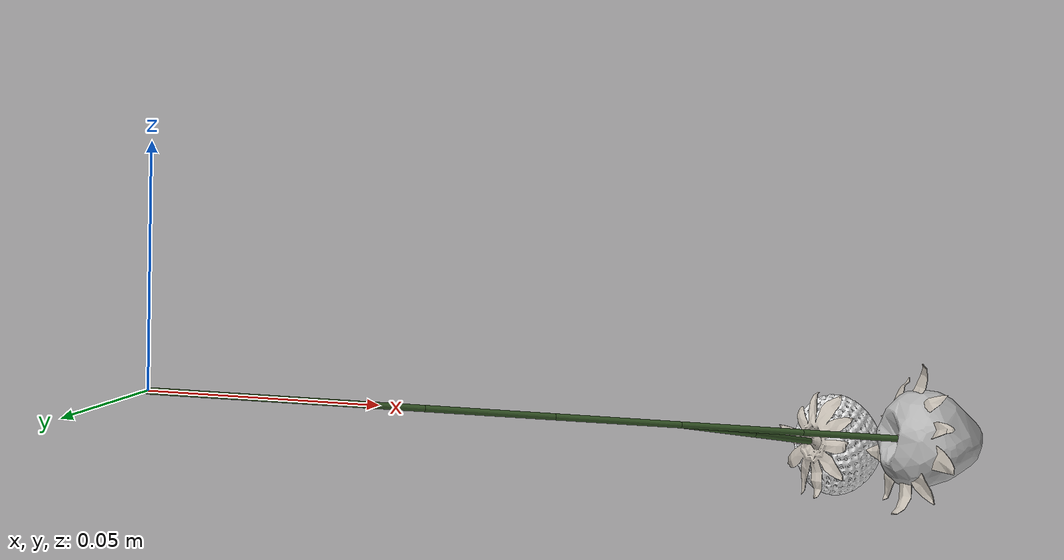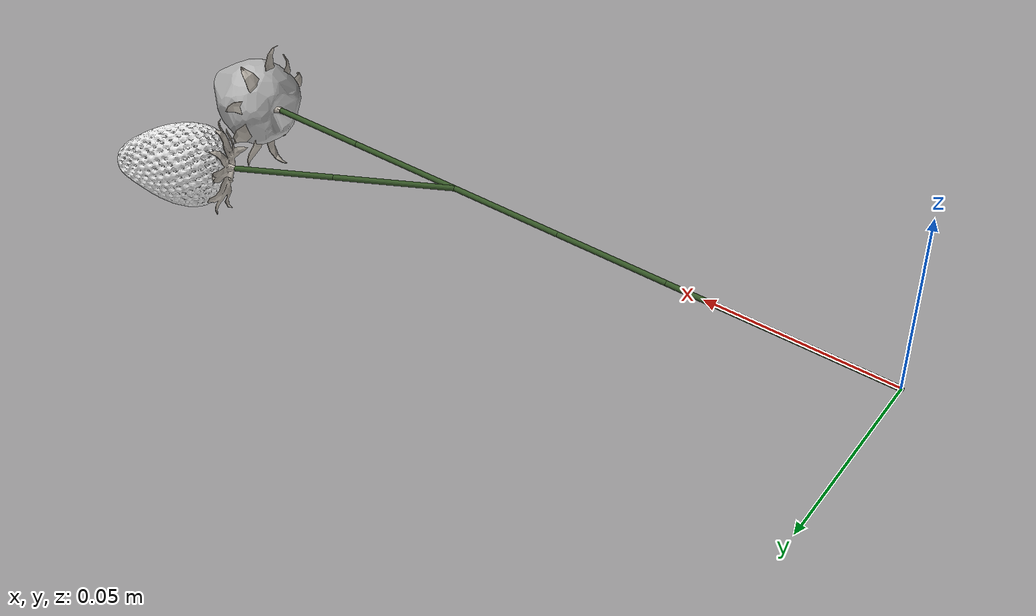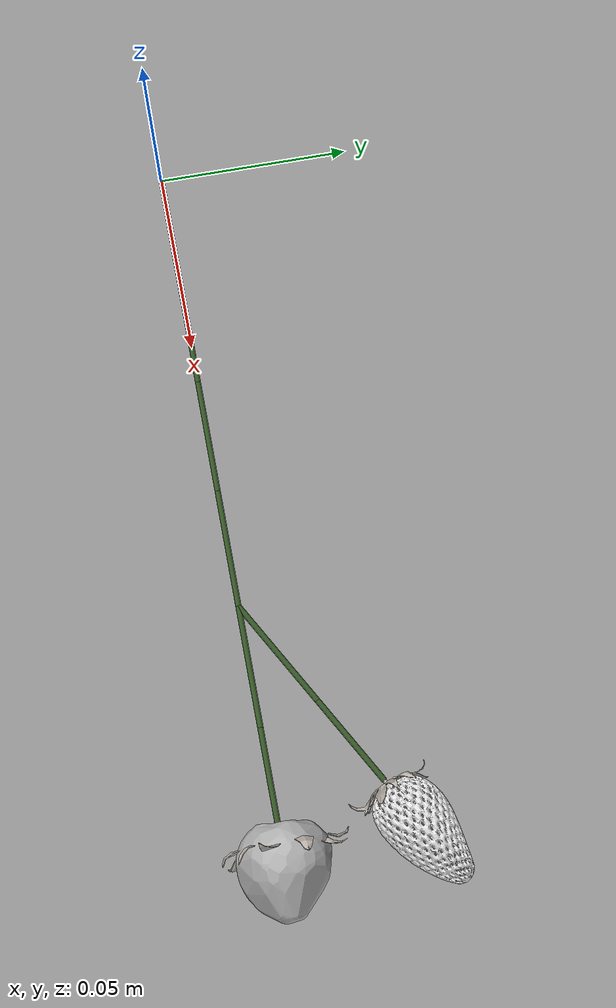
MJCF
<mujoco model="strawb_vine">
  <compiler angle="radian" meshdir="assets/"/>

  <default>
    <default class="vine">
      <joint type="ball" stiffness="0.02" armature="0.0001" damping="0.01" actuatorfrclimited="false"/>
      <geom  type="capsule" size="0.0007" mass="0.0001"
             solref="0.001 1" solimp="0.97 0.995 0.0005 0.5 2"
             rgba="0.208 0.337 0.149 1"/>
    </default>
  </default>

  <asset>
    <texture name="strawb_leaves"   type="2d" file="textures/strawberry_leaves_512.png"/>
    <texture name="strawb_texture"  type="2d" file="textures/r1.png"/>
    <texture name="strawb_green"    type="2d" file="textures/strawberry_fixed_512_green.png"/>
    <material name="strawberry_material" texture="strawb_texture"  shininess="0.01" specular="0.01" reflectance="0.05" texuniform="true"/>
    <material name="strawberry_leaves"   texture="strawb_leaves"   shininess="0.1"  specular="0.1"  reflectance="0.5"  texuniform="true"/>
    <material name="strawberry_material_green"   texture="strawb_green"   shininess="0.1"  specular="0.1"  reflectance="0.5"  texuniform="true"/>

    <mesh name="strawberry"            file="sb5.obj"           scale="1 1 1"/>
    <mesh name="strawberry_leaves"     file="strawberry_leaves_origin.obj"    scale="1 1 1"/>
    <mesh name="strawberry_collision"  file="sb5.obj" scale="1 1 1"/>
    <mesh name="strawberry_small"     file="strawberry_origin.obj"    scale="0.8 0.8 0.6"/>
    <mesh name="strawberry_leaves_small"     file="strawberry_leaves_origin.obj"    scale="0.8 0.8 0.6"/>
    <mesh name="strawberry_collision_small"  file="strawberry_collision_origin.obj" scale="0.8 0.8 0.6"/>
  </asset>

  <worldbody>
    <!-- root at origin; rotate/place when attaching in the parent scene -->
    <body name="vine_root">
      <joint class="vine" name="j0"/>

      <!-- main chain -->
      <body name="seg_first">
        <geom class="vine" name="seg0" fromto="0 0 0  0.03 0 0"/>
        <site name="seg_first" pos="0 0 0" group="3"/>

        <body name="seg_1" pos="0.03 0 0">
          <joint class="vine" name="j1"/>
          <geom  class="vine" name="seg1" fromto="0 0 0  0.03 0 0"/>

          <body name="seg_2" pos="0.03 0 0">
            <joint class="vine" name="j2"/>
            <geom  class="vine" name="seg2" fromto="0 0 0  0.03 0 0"/>

            <body name="seg_last" pos="0.03 0 0">
              <joint class="vine" name="j_last"/>
              <geom  class="vine" name="seg3" fromto="0 0 0  0.03 0 0"/>
              <site  name="seg_last" pos="0.03 0 0" group="3"/>

              <body name="fork1" pos="0.03 0 0" euler="-1.5 -0.5 0">
                <joint class="vine" name="j_fork1"/>
                <geom  class="vine" name="seg_fork1" fromto="0 0 0  0.03 0 0"/>
                <site  name="fork1_end" pos="0.03 0 0" group="3"/>
                <body name="stem_a" pos="0.03 0 0">
                  <geom class="vine" name="stem_a_caps" fromto="0 0 0  0.024 0 0"/>
                  <site name="stem_a_site" pos="0.024 0 0" size="0.0012" rgba="0 0 1 1" group="3"/>
                  <body name="fruit_a" pos="0.024 0 0" euler="0 0 1.57">
                    <geom name="fruit_a_col"   type="mesh" mesh="strawberry_collision_small" density="400" group="3"/>
                    <geom name="fruit_a_vis"   type="mesh" mesh="strawberry_small"          material="strawberry_material_green" contype="0" conaffinity="0" rgba="0.9 0.9 0.9 1"/>
                    <geom name="leaves_a_vis"  type="mesh" mesh="strawberry_leaves_small"   material="strawberry_leaves"   contype="0" conaffinity="0"/>
                  </body>
                </body>
              </body>

              <!-- Branch B (fork): one more vine segment, then stem + fruit -->
              <body name="fork2" pos="0.03 0 0">
                <joint class="vine" name="j_fork2"/>
                <geom  class="vine" name="seg_fork2" fromto="0 0 0  0.03 0 0"/>
                <site  name="fork2_end" pos="0.03 0 0" group="3"/>
                <body name="stem_b" pos="0.03 0 0">
                  <geom class="vine" name="stem_b_caps" fromto="0 0 0  0.024 0 0"/>
                  <site name="stem_b_site" pos="0.024 0 0" size="0.0012" rgba="0 0 1 1" group="3"/>
                  <body name="fruit_b" pos="0.024 0 0" euler="0 0 1.57">
                    <geom name="fruit_b_col"   type="mesh" mesh="strawberry_collision" density="400" group="3"/>
                    <geom name="fruit_b_vis"   type="mesh" mesh="strawberry"          material="strawberry_material" contype="0" conaffinity="0" rgba="0.7 0.7 0.7 1"/>
                    <geom name="leaves_b_vis"  type="mesh" mesh="strawberry_leaves"   material="strawberry_leaves"   contype="0" conaffinity="0"/>
                  </body>
                </body>
              </body>

            </body>
          </body>
        </body>
      </body>
      <!-- end main chain -->

    </body>
  </worldbody>
</mujoco>
